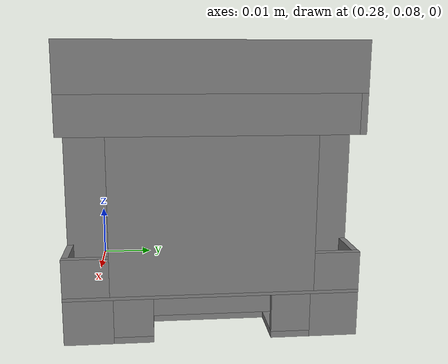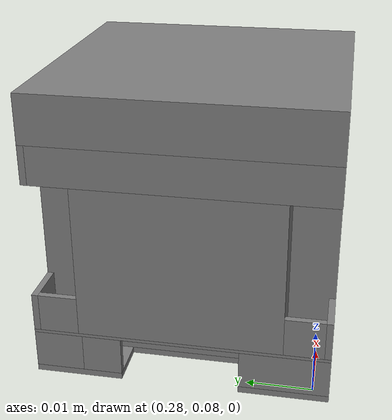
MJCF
<mujoco model="cozmo_cube">
  <compiler angle="radian" autolimits="true" inertiafromgeom="auto"/>

  <default>
    <default class="cube_col">
      <geom type="box" group="0" friction="0.8 0.005 0.0001" density="326"/>
    </default>
  </default>

  <worldbody>
  <!-- Primitive reconstruction of Cozmo light cube
      NOTCHES: 18 x 7 x 7
      CORNER CAVITIES: 7 x 7 footprint, inset to 6 x 6 (1 mm skin)
  -->
    <body name="target_cube" pos="0.3 0.1 0.0225">
      <freejoint name="cube_free"/>

      <!-- foot band: z 0.0 .. 1.0 mm from base -->
      <geom name="cc_foot_00" class="cube_col"
            size="0.009 0.0155 0.0005" pos="0 0 -0.022"/>
      <geom name="cc_foot_01" class="cube_col"
            size="0.0035 0.00375 0.0035" pos="0.019 -0.01875 -0.019"/>
      <geom name="cc_foot_02" class="cube_col"
            size="0.0035 0.00375 0.0035" pos="0.019 0.01875 -0.019"/>
      <geom name="cc_foot_03" class="cube_col"
            size="0.00325 0.0225 0.0005" pos="0.01225 0 -0.022"/>
      <geom name="cc_foot_04" class="cube_col"
            size="0.00675 0.00675 0.0005" pos="-0.01575 -0.01575 -0.022"/>
      <geom name="cc_foot_05" class="cube_col"
            size="0.00675 0.00675 0.0005" pos="-0.01575 0.01575 -0.022"/>
      <geom name="cc_foot_06" class="cube_col"
            size="0.00325 0.009 0.0005" pos="-0.01225 0 -0.022"/>
      <geom name="cc_foot_07" class="cube_col"
            size="0.0035 0.003 0.0005" pos="0.019 -0.012 -0.022"/>
      <geom name="cc_foot_08" class="cube_col"
            size="0.0035 0.003 0.0005" pos="0.019 0.012 -0.022"/>
      <!-- slot band: z 1.0 .. 7.0 mm from base -->
      <geom name="cc_slot_09" class="cube_col"
            size="0.01525 0.0155 0.003" pos="0.00025 0 -0.0185"/>
      <geom name="cc_slot_10" class="cube_col"
            size="0.00375 0.00375 0.003" pos="-0.01875 0.01875 -0.0185"/>
      <geom name="cc_slot_11" class="cube_col"
            size="0.00325 0.00375 0.003" pos="-0.01825 -0.01875 -0.0185"/>
      <geom name="cc_slot_12" class="cube_col"
            size="0.00025 0.015 0.003" pos="-0.01525 0 -0.0185"/>
      <geom name="cc_slot_13" class="cube_col"
            size="0.0005 0.00675 0.003" pos="-0.022 -0.01575 -0.0185"/>
      <geom name="cc_slot_14" class="cube_col"
            size="0.003 0.0005 0.003" pos="-0.012 -0.022 -0.0185"/>
      <geom name="cc_slot_15" class="cube_col"
            size="0.0005 0.003 0.003" pos="-0.022 0.012 -0.0185"/>
      <geom name="cc_slot_16" class="cube_col"
            size="0.0005 0.003 0.003" pos="0.022 -0.012 -0.0185"/>
      <geom name="cc_slot_17" class="cube_col"
            size="0.0005 0.003 0.003" pos="0.022 0.012 -0.0185"/>
      <geom name="cc_slot_18" class="cube_col"
            size="0.003 0.0005 0.003" pos="0.012 0.022 -0.0185"/>
      <geom name="cc_slot_19" class="cube_col"
            size="0.003 0.0005 0.003" pos="0.012 -0.022 -0.0185"/>
      <geom name="cc_slot_20" class="cube_col"
            size="0.003 0.0005 0.003" pos="-0.012 0.022 -0.0185"/>
      <geom name="cc_slot_21" class="cube_col"
            size="0.00025 0.0035 0.003" pos="0.01525 0.019 -0.0185"/>
      <geom name="cc_slot_22" class="cube_col"
            size="0.00025 0.0035 0.003" pos="0.01525 -0.019 -0.0185"/>
      <!-- shelf band: z 7.0 .. 7.5 mm from base -->
      <geom name="cc_shelf_23" class="cube_col"
            size="0.0225 0.0225 0.00025" pos="0 0 -0.01525"/>
      <!-- lopkt band: z 7.5 .. 31.5 mm from base -->
      <geom name="cc_lopkt_24" class="cube_col"
            size="0.0155 0.0225 0.012" pos="0 0 -0.003"/>
      <geom name="cc_lopkt_25" class="cube_col"
            size="0.0035 0.0155 0.012" pos="0.019 0 -0.003"/>
      <geom name="cc_lopkt_26" class="cube_col"
            size="0.0035 0.0155 0.012" pos="-0.019 0 -0.003"/>
      <geom name="cc_lopkt_27" class="cube_col"
            size="0.0035 0.0005 0.003" pos="-0.019 0.022 -0.012"/>
      <geom name="cc_lopkt_28" class="cube_col"
            size="0.0035 0.0005 0.003" pos="-0.019 -0.022 -0.012"/>
      <geom name="cc_lopkt_29" class="cube_col"
            size="0.0005 0.0035 0.003" pos="0.022 0.019 -0.012"/>
      <geom name="cc_lopkt_30" class="cube_col"
            size="0.0005 0.0035 0.003" pos="0.022 -0.019 -0.012"/>
      <geom name="cc_lopkt_31" class="cube_col"
            size="0.003 0.0005 0.003" pos="0.0185 0.022 -0.012"/>
      <geom name="cc_lopkt_32" class="cube_col"
            size="0.0005 0.003 0.003" pos="-0.022 0.0185 -0.012"/>
      <geom name="cc_lopkt_33" class="cube_col"
            size="0.003 0.0005 0.003" pos="0.0185 -0.022 -0.012"/>
      <geom name="cc_lopkt_34" class="cube_col"
            size="0.0005 0.003 0.003" pos="-0.022 -0.0185 -0.012"/>
      <!-- hipkt band: z 31.5 .. 37.5 mm from base -->
      <geom name="cc_hipkt_35" class="cube_col"
            size="0.0215 0.0155 0.003" pos="0 0 0.012"/>
      <geom name="cc_hipkt_36" class="cube_col"
            size="0.0155 0.003 0.003" pos="0 -0.0185 0.012"/>
      <geom name="cc_hipkt_37" class="cube_col"
            size="0.01225 0.0035 0.003" pos="0.00325 0.019 0.012"/>
      <geom name="cc_hipkt_38" class="cube_col"
            size="0.0005 0.022 0.003" pos="-0.022 -0.0005 0.012"/>
      <geom name="cc_hipkt_39" class="cube_col"
            size="0.0005 0.022 0.003" pos="0.022 -0.0005 0.012"/>
      <geom name="cc_hipkt_40" class="cube_col"
            size="0.0215 0.0005 0.003" pos="0 -0.022 0.012"/>
      <geom name="cc_hipkt_41" class="cube_col"
            size="0.00325 0.003 0.003" pos="-0.01225 0.0185 0.012"/>
      <geom name="cc_hipkt_42" class="cube_col"
            size="0.00675 0.0005 0.003" pos="-0.01575 0.022 0.012"/>
      <geom name="cc_hipkt_43" class="cube_col"
            size="0.0035 0.0005 0.003" pos="0.019 0.022 0.012"/>
      <!-- cap band: z 37.5 .. 45.0 mm from base -->
      <geom name="cc_cap_44" class="cube_col"
            size="0.0225 0.0225 0.00375" pos="0 0 0.01875"/>
    </body>
  </worldbody>
</mujoco>
